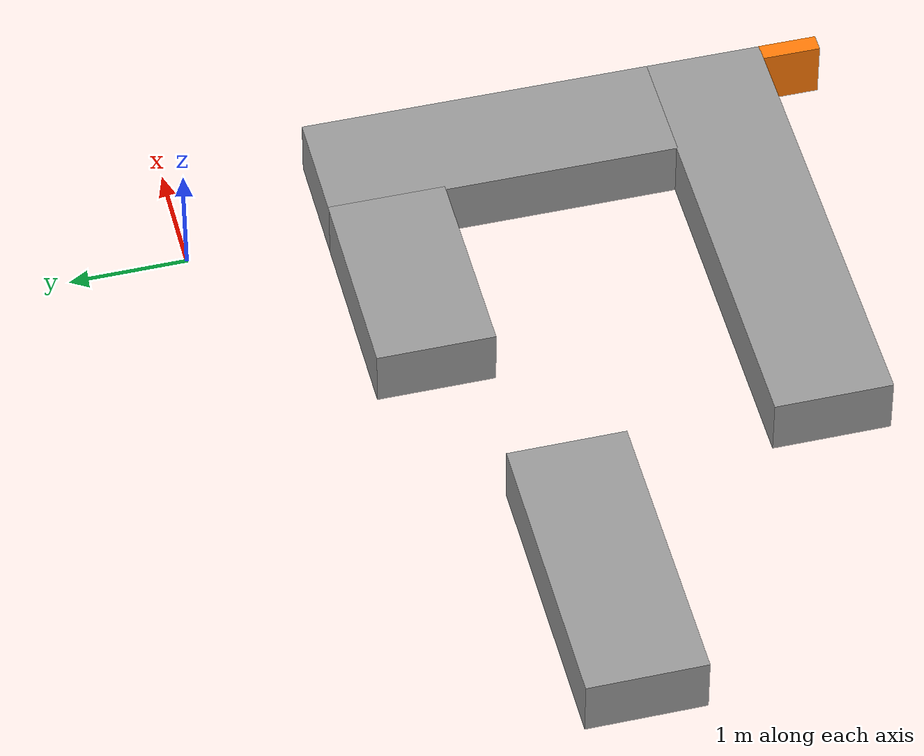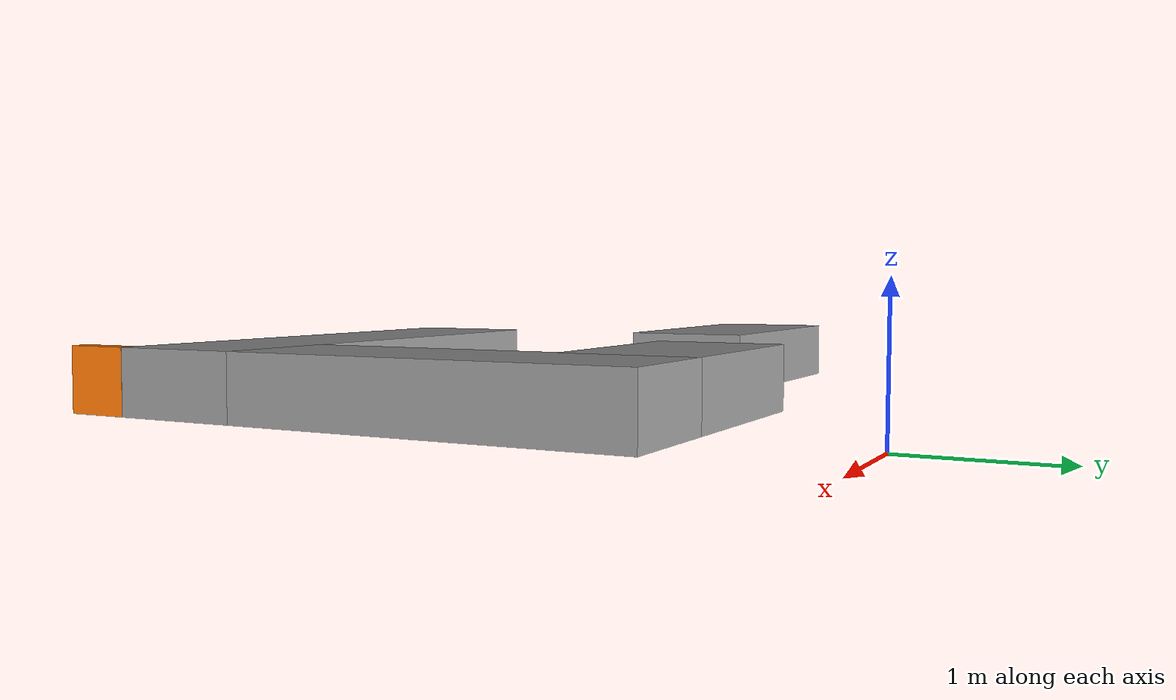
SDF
<?xml version='1.0'?>
<sdf version='1.6'>
  <model name='open_maze'>
    <pose frame=''>-2.41058 -3.42308 0 0 -0 0</pose>
    <link name='Wall_0'>
      <collision name='Wall_0_Collision'>
        <geometry>
          <box>
            <size>1.75 1 0.5</size>
          </box>
        </geometry>
        <pose frame=''>0 0 0.25 0 -0 0</pose>
      </collision>
      <visual name='Wall_0_Visual'>
        <pose frame=''>0 0 0.25 0 -0 0</pose>
        <geometry>
          <box>
            <size>1.75 1 0.5</size>
          </box>
        </geometry>
        <material>
          <script>
            <uri>file://media/materials/scripts/gazebo.material</uri>
            <name>Gazebo/Grey</name>
          </script>
          <ambient>1 1 1 1</ambient>
        </material>
        <meta>
          <layer>0</layer>
        </meta>
      </visual>
      <pose frame=''>1.39353 1.74308 0 0 -0 0</pose>
    </link>
    <link name='Wall_12'>
      <collision name='Wall_12_Collision'>
        <geometry>
          <box>
            <size>0.5 0.15 0.5</size>
          </box>
        </geometry>
        <pose frame=''>0 0 0.25 0 -0 0</pose>
      </collision>
      <visual name='Wall_12_Visual'>
        <pose frame=''>0 0 0.25 0 -0 0</pose>
        <geometry>
          <box>
            <size>0.5 0.15 0.5</size>
          </box>
        </geometry>
        <material>
          <script>
            <uri>file://media/materials/scripts/gazebo.material</uri>
            <name>Gazebo/Grey</name>
          </script>
          <ambient>0.996078 0.47451 0.0196078 1</ambient>
        </material>
        <meta>
          <layer>0</layer>
        </meta>
      </visual>
      <pose frame=''>3.156 -1.99308 0 0 -0 -1.5708</pose>
    </link>
    <link name='Wall_4'>
      <collision name='Wall_4_Collision'>
        <geometry>
          <box>
            <size>3 1 0.5</size>
          </box>
        </geometry>
        <pose frame=''>0 0 0.25 0 -0 0</pose>
      </collision>
      <visual name='Wall_4_Visual'>
        <pose frame=''>0 0 0.25 0 -0 0</pose>
        <geometry>
          <box>
            <size>3 1 0.5</size>
          </box>
        </geometry>
        <material>
          <script>
            <uri>file://media/materials/scripts/gazebo.material</uri>
            <name>Gazebo/Grey</name>
          </script>
          <ambient>1 1 1 1</ambient>
        </material>
        <meta>
          <layer>0</layer>
        </meta>
      </visual>
      <pose frame=''>2.73058 0.743085 0 0 -0 -1.5708</pose>
    </link>
    <link name='Wall_6'>
      <collision name='Wall_6_Collision'>
        <geometry>
          <box>
            <size>4 1 0.5</size>
          </box>
        </geometry>
        <pose frame=''>0 0 0.25 0 -0 0</pose>
      </collision>
      <visual name='Wall_6_Visual'>
        <pose frame=''>0 0 0.25 0 -0 0</pose>
        <geometry>
          <box>
            <size>4 1 0.5</size>
          </box>
        </geometry>
        <material>
          <script>
            <uri>file://media/materials/scripts/gazebo.material</uri>
            <name>Gazebo/Grey</name>
          </script>
          <ambient>1 1 1 1</ambient>
        </material>
        <meta>
          <layer>0</layer>
        </meta>
      </visual>
      <pose frame=''>1.22958 -1.24691 0 0 -0 3.14159</pose>
    </link>
    <link name='Wall_8'>
      <collision name='Wall_8_Collision'>
        <geometry>
          <box>
            <size>2.5 1 0.5</size>
          </box>
        </geometry>
        <pose frame=''>0 0 0.25 0 -0 0</pose>
      </collision>
      <visual name='Wall_8_Visual'>
        <pose frame=''>0 0 0.25 0 -0 0</pose>
        <geometry>
          <box>
            <size>2.5 1 0.5</size>
          </box>
        </geometry>
        <material>
          <script>
            <uri>file://media/materials/scripts/gazebo.material</uri>
            <name>Gazebo/Grey</name>
          </script>
          <ambient>1 1 1 1</ambient>
        </material>
        <meta>
          <layer>0</layer>
        </meta>
      </visual>
      <pose frame=''>-1.981 0.975045 0 0 -0 0</pose>
    </link>
    <static>1</static>
  </model>
</sdf>
